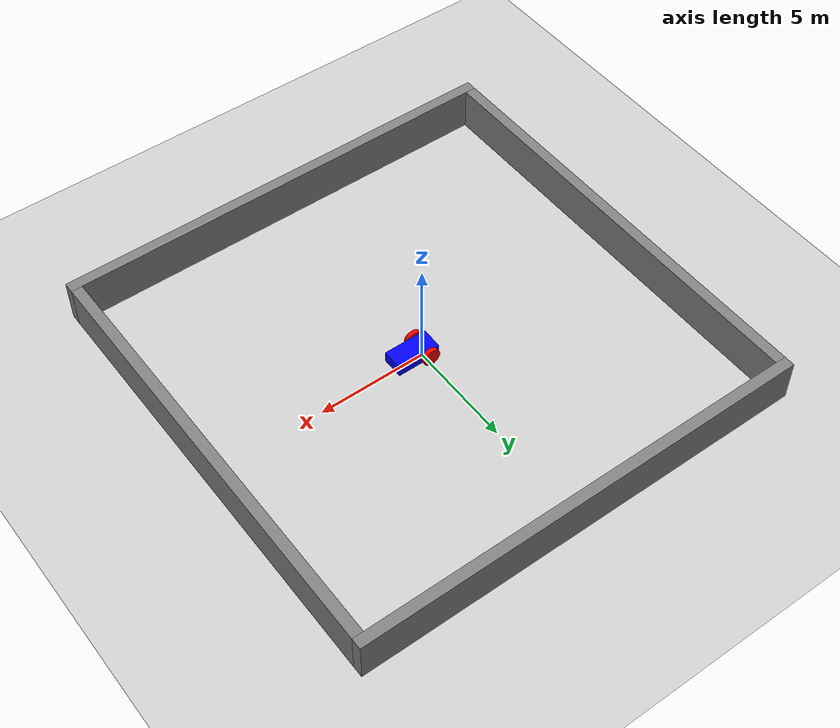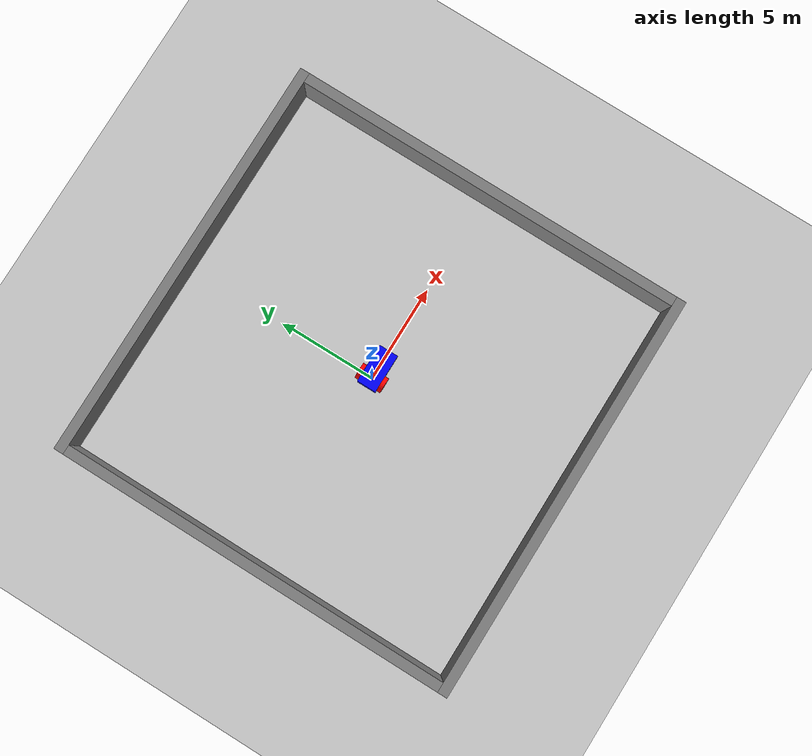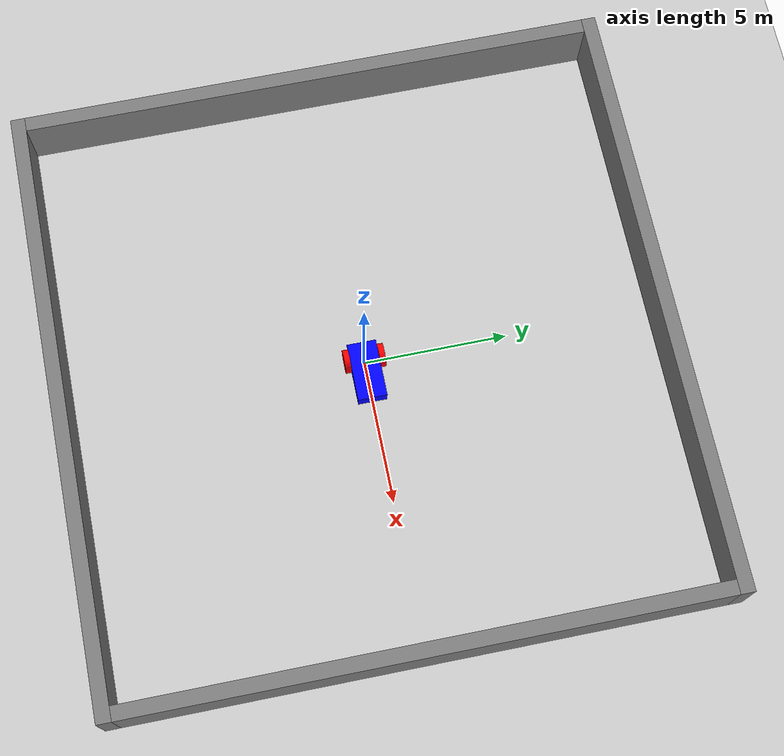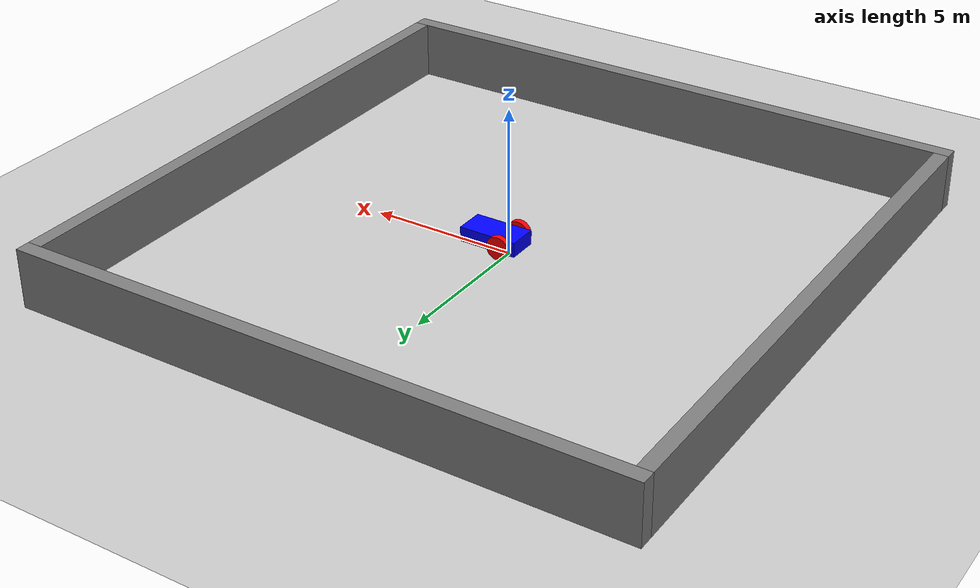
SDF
<sdf version="1.9">
 <world name="world_demo">
  <physics name="1ms" type="ignored">
   <max_step_size>0.001</max_step_size>
   <real_time_factor>1.0</real_time_factor>
   <real_time_update_rate>1000.0</real_time_update_rate>
  </physics>
  <plugin filename="libignition-gazebo-physics-system.so" name="ignition::gazebo::systems::Physics"/>
  <plugin filename="libignition-gazebo-user-commands-system.so" name="ignition::gazebo::systems::UserCommands"/>
  <plugin filename="libignition-gazebo-scene-broadcaster-system.so" name="ignition::gazebo::systems::SceneBroadcaster"/>
  <plugin filename="libignition-gazebo-sensors-system.so" name="ignition::gazebo::systems::Sensors">
   <render_engine>ogre2</render_engine>
  </plugin>
  <plugin filename="libignition-gazebo-imu-system.so" name="ignition::gazebo::systems::Imu"/>
  <light type="directional" name="sun">
   <pose>0 0 10 0 0 0</pose>
   <diffuse>0.8 0.8 0.8 1</diffuse>
   <specular>0.2 0.2 0.2 1</specular>
   <attenuation>
    <range>1000</range>
    <constant>0.9</constant>
    <linear>0.01</linear>
    <quadratic>0.001</quadratic>
   </attenuation>
   <direction>-0.5 0.1 -0.9</direction>
  </light>
  <model name="ground_plane">
   <static>true</static>
   <link name="link">
    <collision name="collision"><geometry><plane><normal>0 0 1</normal></plane></geometry></collision>
    <visual name="visual">
     <geometry><plane><normal>0 0 1</normal><size>100 100</size></plane></geometry>
     <material>
      <ambient>0.8 0.8 0.8 1</ambient>
      <diffuse>0.8 0.8 0.8 1</diffuse>
      <specular>0.8 0.8 0.8 1</specular>
     </material>
    </visual>
   </link>
  </model>
  <model name="wallEnd">
   <static>true</static>
   <pose>10.25 0 1 0 0 0</pose>
   <link name="box">
    <visual name="visual">
     <geometry><box><size>0.5 20.0 2.0</size></box></geometry>
     <material>
      <ambient>0.5 0.5 0.5 1</ambient>
      <diffuse>0.5 0.5 0.5 1</diffuse>
      <specular>0.5 0.5 0.5 1</specular>
     </material>
    </visual>
    <collision name="collision"><geometry><box><size>0.5 20.0 2.0</size></box></geometry></collision>
   </link>
  </model>
  <model name="wallNear">
   <static>true</static>
   <pose>-10.25 0 1 0 0 0</pose>
   <link name="box">
    <visual name="visual">
     <geometry><box><size>0.5 20.0 2.0</size></box></geometry>
     <material>
      <ambient>0.5 0.5 0.5 1</ambient>
      <diffuse>0.5 0.5 0.5 1</diffuse>
      <specular>0.5 0.5 0.5 1</specular>
     </material>
    </visual>
    <collision name="collision"><geometry><box><size>0.5 20.0 2.0</size></box></geometry></collision>
   </link>
  </model>
  <model name="wallLeft">
   <static>true</static>
   <pose>0.0 10.25 1 0 0 1.5708</pose>
   <link name="box">
    <visual name="visual">
     <geometry><box><size>.5 21.0 2.0</size></box></geometry>
     <material>
      <ambient>0.5 0.5 0.5 1</ambient>
      <diffuse>0.5 0.5 0.5 1</diffuse>
      <specular>0.5 0.5 0.5 1</specular>
     </material>
    </visual>
    <collision name="collision"><geometry><box><size>0.5 21.0 2.0</size></box></geometry></collision>
   </link>
  </model>
  <model name="wallRight">
   <static>true</static>
   <pose>0.00 -10.25 1 0 0 1.5708</pose>
   <link name="box">
    <visual name="visual">
     <geometry><box><size>0.5 21.0 2.0</size></box></geometry>
     <material>
      <ambient>0.5 0.5 0.5 1</ambient>
      <diffuse>0.5 0.5 0.5 1</diffuse>
      <specular>0.5 0.5 0.5 1</specular>
     </material>
    </visual>
    <collision name="collision"><geometry><box><size>0.5 21.0 2.0</size></box></geometry></collision>
   </link>
  </model>
  <include><uri>model://robot</uri><pose>0 0 0.1 0 0 0</pose></include>
 </world>
</sdf>

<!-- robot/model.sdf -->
<sdf version="1.9">
  <model name='vehicle_blue' canonical_link='chassis'>

    <link name='chassis'>
        <pose relative_to='__model__'>0.5 0 0.4 0 0 0</pose>
        <inertial> <!--inertial properties of the link mass, inertia matix-->
            <mass>1.14395</mass>
            <inertia>
                <ixx>0.126164</ixx>
                <ixy>0</ixy>
                <ixz>0</ixz>
                <iyy>0.416519</iyy>
                <iyz>0</iyz>
                <izz>0.481014</izz>
            </inertia>
        </inertial>
        <visual name='visual'>
            <geometry>
                <box>
                    <size>2.0 1.0 0.5</size> <!--question: this size is in meter-->
                </box>
            </geometry>
            <!--let's add color to our link-->
            <material>
                <ambient>0.0 0.0 1.0 1</ambient>
                <diffuse>0.0 0.0 1.0 1</diffuse>
                <specular>0.0 0.0 1.0 1</specular>
            </material>
        </visual>
        <collision name='collision'> <!--todo: describe why we need the collision-->
            <geometry>
                <box>
                    <size>2.0 1.0 0.5</size>
                </box>
            </geometry>
        </collision>

        <sensor name='gpu_lidar' type='gpu_lidar'>"
            <pose relative_to='lidar_frame'>0 0 0 0 0 0</pose>
            <topic>lidar</topic>
            <update_rate>10</update_rate>
            <ray>
                <scan>
                    <horizontal>
                        <samples>640</samples>
                        <resolution>1</resolution>
                        <min_angle>-1.396263</min_angle>
                        <max_angle>1.396263</max_angle>
                    </horizontal>
                    <vertical>
                        <samples>1</samples>
                        <resolution>0.01</resolution>
                        <min_angle>0</min_angle>
                        <max_angle>0</max_angle>
                    </vertical>
                </scan>
                <range>
                    <min>0.08</min>
                    <max>10.0</max>
                    <resolution>0.01</resolution>
                </range>
            </ray>
            <always_on>1</always_on>
            <visualize>true</visualize>
        </sensor>

        <sensor name="imu_sensor" type="imu">
            <always_on>1</always_on>
            <update_rate>100</update_rate>
            <visualize>true</visualize>
            <topic>imu</topic>
        </sensor>

    </link>

    <!--let's build the left wheel-->
    <link name='left_wheel'>
        <pose relative_to="chassis">-0.5 0.6 0 -1.5707 0 0</pose> <!--angles are in radian-->
        <inertial>
            <mass>2</mass>
            <inertia>
                <ixx>0.145833</ixx>
                <ixy>0</ixy>
                <ixz>0</ixz>
                <iyy>0.145833</iyy>
                <iyz>0</iyz>
                <izz>0.125</izz>
            </inertia>
        </inertial>
        <visual name='visual'>
            <geometry>
                <cylinder>
                    <radius>0.4</radius>
                    <length>0.2</length>
                </cylinder>
            </geometry>
            <material>
                <ambient>1.0 0.0 0.0 1</ambient>
                <diffuse>1.0 0.0 0.0 1</diffuse>
                <specular>1.0 0.0 0.0 1</specular>
            </material>
        </visual>
        <collision name='collision'>
            <geometry>
                <cylinder>
                    <radius>0.4</radius>
                    <length>0.2</length>
                </cylinder>
            </geometry>
        </collision>
    </link>

    <!--copy and paste for right wheel but change position-->
    <link name='right_wheel'>
        <pose relative_to="chassis">-0.5 -0.6 0 -1.5707 0 0</pose> <!--angles are in radian-->
        <inertial>
            <mass>1</mass>
            <inertia>
                <ixx>0.145833</ixx>
                <ixy>0</ixy>
                <ixz>0</ixz>
                <iyy>0.145833</iyy>
                <iyz>0</iyz>
                <izz>0.125</izz>
            </inertia>
        </inertial>
        <visual name='visual'>
            <geometry>
                <cylinder>
                    <radius>0.4</radius>
                    <length>0.2</length>
                </cylinder>
            </geometry>
            <material>
                <ambient>1.0 0.0 0.0 1</ambient>
                <diffuse>1.0 0.0 0.0 1</diffuse>
                <specular>1.0 0.0 0.0 1</specular>
            </material>
        </visual>
        <collision name='collision'>
            <geometry>
                <cylinder>
                    <radius>0.4</radius>
                    <length>0.2</length>
                </cylinder>
            </geometry>
        </collision>
    </link>

    <frame name="caster_frame" attached_to='chassis'>
        <pose>0.8 0 -0.2 0 0 0</pose>
    </frame>

    <!--caster wheel-->
    <link name='caster'>
        <pose relative_to='caster_frame'/>
        <inertial>
            <mass>1</mass>
            <inertia>
                <ixx>0.1</ixx>
                <ixy>0</ixy>
                <ixz>0</ixz>
                <iyy>0.1</iyy>
                <iyz>0</iyz>
                <izz>0.1</izz>
            </inertia>
        </inertial>
        <visual name='visual'>
            <geometry>
                <sphere>
                    <radius>0.2</radius>
                </sphere>
            </geometry>
            <material>
                <ambient>0.0 1 0.0 1</ambient>
                <diffuse>0.0 1 0.0 1</diffuse>
                <specular>0.0 1 0.0 1</specular>
            </material>
        </visual>
        <collision name='collision'>
            <geometry>
                <sphere>
                    <radius>0.2</radius>
                </sphere>
            </geometry>
        </collision>
    </link>

    <!--connecting these links together using joints-->
    <joint name='left_wheel_joint' type='revolute'> <!--continous joint is not supported yet-->
        <pose relative_to='left_wheel'/>
        <parent>chassis</parent>
        <child>left_wheel</child>
        <axis>
            <xyz expressed_in='__model__'>0 1 0</xyz> <!--can be defined as any frame or even arbitrary frames-->
            <limit>
                <lower>-1.79769e+308</lower>    <!--negative infinity-->
                <upper>1.79769e+308</upper>     <!--positive infinity-->
            </limit>
        </axis>
    </joint>

    <joint name='right_wheel_joint' type='revolute'>
        <pose relative_to='right_wheel'/>
        <parent>chassis</parent>
        <child>right_wheel</child>
        <axis>
            <xyz expressed_in='__model__'>0 1 0</xyz>
            <limit>
                <lower>-1.79769e+308</lower>    <!--negative infinity-->
                <upper>1.79769e+308</upper>     <!--positive infinity-->
            </limit>
        </axis>
    </joint>

    <!--different type of joints ball joint--> <!--defult value is the child-->
    <joint name='caster_wheel' type='ball'>
        <parent>chassis</parent>
        <child>caster</child>
    </joint>

    <!--diff drive plugin-->
    <plugin
        filename="libignition-gazebo-diff-drive-system.so"
        name="ignition::gazebo::systems::DiffDrive">
        <left_joint>left_wheel_joint</left_joint>
        <right_joint>right_wheel_joint</right_joint>
        <wheel_separation>1.2</wheel_separation>
        <wheel_radius>0.4</wheel_radius>
        <odom_publish_frequency>1</odom_publish_frequency>
        <topic>cmd_vel</topic>
    </plugin>
  </model>

  <!-- Moving Forward-->
  <plugin filename="libignition-gazebo-triggered-publisher-system.so"
          name="ignition::gazebo::systems::TriggeredPublisher">
      <input type="ignition.msgs.Int32" topic="/keyboard/keypress">
          <match field="data">16777235</match>
      </input>
      <output type="ignition.msgs.Twist" topic="/cmd_vel">
          linear: {x: 0.5}, angular: {z: 0.0}
      </output>
  </plugin>

  <!-- Moving Backward-->
  <plugin filename="libignition-gazebo-triggered-publisher-system.so"
          name="ignition::gazebo::systems::TriggeredPublisher">
      <input type="ignition.msgs.Int32" topic="/keyboard/keypress">
          <match field="data">16777237</match>
      </input>
      <output type="ignition.msgs.Twist" topic="/cmd_vel">
          linear: {x: -0.5}, angular: {z: 0.0}
      </output>
  </plugin>

  <!-- Rotating right-->
  <plugin filename="libignition-gazebo-triggered-publisher-system.so"
          name="ignition::gazebo::systems::TriggeredPublisher">
      <input type="ignition.msgs.Int32" topic="/keyboard/keypress">
          <match field="data">16777236</match>
      </input>
      <output type="ignition.msgs.Twist" topic="/cmd_vel">
          linear: {x: 0.0}, angular: {z: -0.5}
      </output>
  </plugin>

  <!--Rotating left-->
  <plugin filename="libignition-gazebo-triggered-publisher-system.so"
          name="ignition::gazebo::systems::TriggeredPublisher">
      <input type="ignition.msgs.Int32" topic="/keyboard/keypress">
          <match field="data">16777234</match>
      </input>
      <output type="ignition.msgs.Twist" topic="/cmd_vel">
          linear: {x: 0.0}, angular: {z: 0.5}
      </output>
  </plugin>
</sdf>
